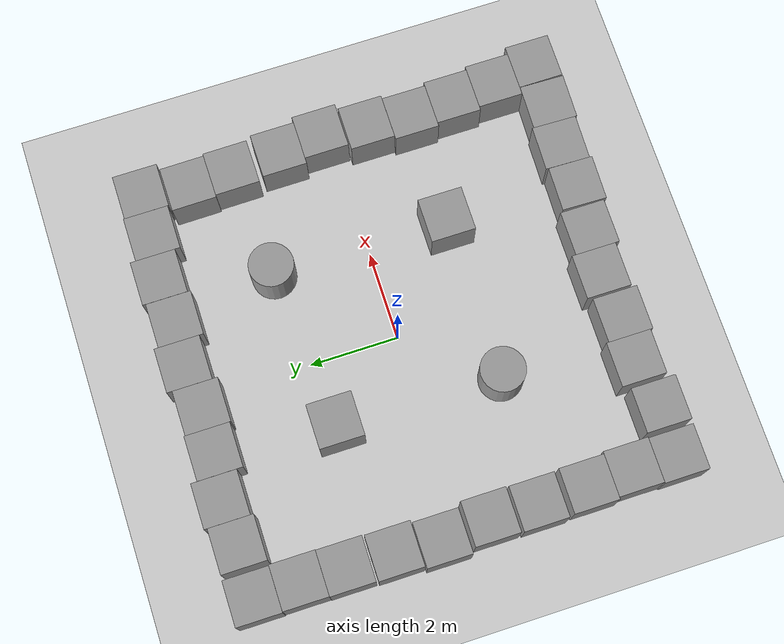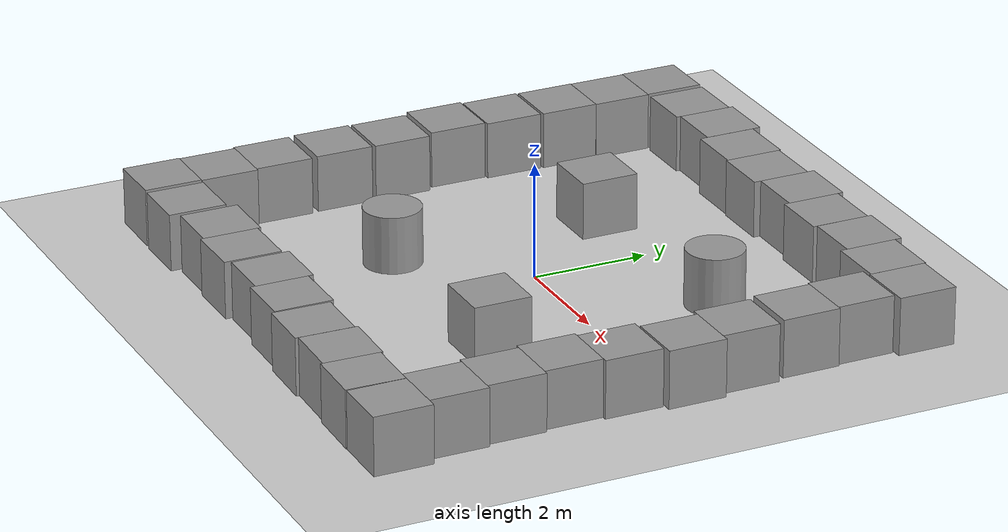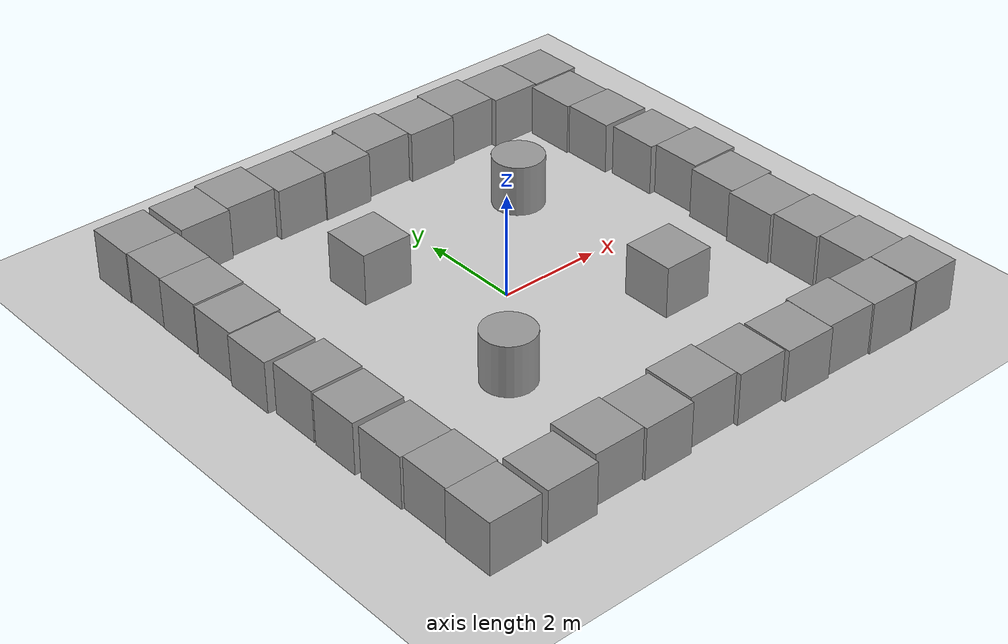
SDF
<sdf version="1.6">
 <world name="default">
  <light name="sun" type="directional">
   <pose>0 0 10 0 -0 0</pose>
   <diffuse>0.8 0.8 0.8 1</diffuse>
   <specular>0.1 0.1 0.1 1</specular>
   <attenuation>
    <range>1000</range>
    <constant>0.9</constant>
    <linear>0.01</linear>
    <quadratic>0.001</quadratic>
   </attenuation>
   <direction>-0.5 0.5 -1</direction>
  </light>
  <model name="ground_plane">
   <static>1</static>
   <link name="link">
    <collision name="collision">
     <geometry><plane><normal>0 0 1</normal><size>100 100</size></plane></geometry>
     <surface><friction><ode><mu>100</mu><mu2>50</mu2></ode></friction></surface>
    </collision>
    <visual name="visual">
     <cast_shadows>0</cast_shadows>
     <geometry><plane><normal>0 0 1</normal><size>100 100</size></plane></geometry>
     <material>
      <script><uri>file://media/materials/scripts/gazebo.material</uri><name>Gazebo/Grey</name></script>
     </material>
    </visual>
   </link>
  </model>
  <gravity>0 0 -9.8</gravity>
  <magnetic_field>6e-06 2.3e-05 -4.2e-05</magnetic_field>
  <atmosphere type="adiabatic"/>
  <physics name="default_physics" default="0" type="ode">
   <max_step_size>0.001</max_step_size>
   <real_time_factor>1</real_time_factor>
   <real_time_update_rate>1000</real_time_update_rate>
  </physics>
  <scene><ambient>0.4 0.4 0.4 1</ambient><background>0.7 0.7 0.7 1</background><shadows>1</shadows></scene>
  <spherical_coordinates>
   <surface_model>EARTH_WGS84</surface_model>
   <latitude_deg>0</latitude_deg>
   <longitude_deg>0</longitude_deg>
   <elevation>0</elevation>
   <heading_deg>0</heading_deg>
  </spherical_coordinates>
  <model name="unit_box_0_0">
   <pose>-4.47179 4.56821 0.499995 1e-05 -0 -0.001897</pose>
   <link name="link">
    <inertial>
     <mass>1</mass>
     <inertia>
      <ixx>0.166667</ixx>
      <ixy>0</ixy>
      <ixz>0</ixz>
      <iyy>0.166667</iyy>
      <iyz>0</iyz>
      <izz>0.166667</izz>
     </inertia>
    </inertial>
    <collision name="collision"><geometry><box><size>1 1 1</size></box></geometry></collision>
    <visual name="visual">
     <geometry><box><size>1 1 1</size></box></geometry>
     <material>
      <script><name>Gazebo/Grey</name><uri>file://media/materials/scripts/gazebo.material</uri></script>
     </material>
    </visual>
   </link>
  </model>
  <model name="unit_box_0_1">
   <pose>-4.45666 3.56798 0.499995 0 1e-05 -0.001628</pose>
   <link name="link">
    <inertial>
     <mass>1</mass>
     <inertia>
      <ixx>0.166667</ixx>
      <ixy>0</ixy>
      <ixz>0</ixz>
      <iyy>0.166667</iyy>
      <iyz>0</iyz>
      <izz>0.166667</izz>
     </inertia>
    </inertial>
    <collision name="collision"><geometry><box><size>1 1 1</size></box></geometry></collision>
    <visual name="visual">
     <geometry><box><size>1 1 1</size></box></geometry>
     <material>
      <script><name>Gazebo/Grey</name><uri>file://media/materials/scripts/gazebo.material</uri></script>
     </material>
    </visual>
   </link>
  </model>
  <model name="unit_box_0_2">
   <pose>-4.46914 2.56783 0.499995 -0 1e-05 -0.001457</pose>
   <link name="link">
    <inertial>
     <mass>1</mass>
     <inertia>
      <ixx>0.166667</ixx>
      <ixy>0</ixy>
      <ixz>0</ixz>
      <iyy>0.166667</iyy>
      <iyz>0</iyz>
      <izz>0.166667</izz>
     </inertia>
    </inertial>
    <collision name="collision"><geometry><box><size>1 1 1</size></box></geometry></collision>
    <visual name="visual">
     <geometry><box><size>1 1 1</size></box></geometry>
     <material>
      <script><name>Gazebo/Grey</name><uri>file://media/materials/scripts/gazebo.material</uri></script>
     </material>
    </visual>
   </link>
  </model>
  <model name="unit_box_0_3">
   <pose>-4.48628 1.52218 0.499995 0 1e-05 0</pose>
   <link name="link">
    <inertial>
     <mass>1</mass>
     <inertia>
      <ixx>0.166667</ixx>
      <ixy>0</ixy>
      <ixz>0</ixz>
      <iyy>0.166667</iyy>
      <iyz>0</iyz>
      <izz>0.166667</izz>
     </inertia>
    </inertial>
    <collision name="collision"><geometry><box><size>1 1 1</size></box></geometry></collision>
    <visual name="visual">
     <geometry><box><size>1 1 1</size></box></geometry>
     <material>
      <script><name>Gazebo/Grey</name><uri>file://media/materials/scripts/gazebo.material</uri></script>
     </material>
    </visual>
   </link>
  </model>
  <model name="unit_box_0_4">
   <pose>-4.54384 0.499458 0.499995 -1e-05 0 0</pose>
   <link name="link">
    <inertial>
     <mass>1</mass>
     <inertia>
      <ixx>0.166667</ixx>
      <ixy>0</ixy>
      <ixz>0</ixz>
      <iyy>0.166667</iyy>
      <iyz>0</iyz>
      <izz>0.166667</izz>
     </inertia>
    </inertial>
    <collision name="collision"><geometry><box><size>1 1 1</size></box></geometry></collision>
    <visual name="visual">
     <geometry><box><size>1 1 1</size></box></geometry>
     <material>
      <script><name>Gazebo/Grey</name><uri>file://media/materials/scripts/gazebo.material</uri></script>
     </material>
    </visual>
   </link>
  </model>
  <model name="unit_box_0_5">
   <pose>-4.43764 -0.581842 0.499995 0 1e-05 0</pose>
   <link name="link">
    <inertial>
     <mass>1</mass>
     <inertia>
      <ixx>0.166667</ixx>
      <ixy>0</ixy>
      <ixz>0</ixz>
      <iyy>0.166667</iyy>
      <iyz>0</iyz>
      <izz>0.166667</izz>
     </inertia>
    </inertial>
    <collision name="collision"><geometry><box><size>1 1 1</size></box></geometry></collision>
    <visual name="visual">
     <geometry><box><size>1 1 1</size></box></geometry>
     <material>
      <script><name>Gazebo/Grey</name><uri>file://media/materials/scripts/gazebo.material</uri></script>
     </material>
    </visual>
   </link>
  </model>
  <model name="unit_box_0_6">
   <pose>-4.4524 -1.63881 0.499995 -1e-05 0 0</pose>
   <link name="link">
    <inertial>
     <mass>1</mass>
     <inertia>
      <ixx>0.166667</ixx>
      <ixy>0</ixy>
      <ixz>0</ixz>
      <iyy>0.166667</iyy>
      <iyz>0</iyz>
      <izz>0.166667</izz>
     </inertia>
    </inertial>
    <collision name="collision"><geometry><box><size>1 1 1</size></box></geometry></collision>
    <visual name="visual">
     <geometry><box><size>1 1 1</size></box></geometry>
     <material>
      <script><name>Gazebo/Grey</name><uri>file://media/materials/scripts/gazebo.material</uri></script>
     </material>
    </visual>
   </link>
  </model>
  <model name="unit_box_0_7">
   <pose>-4.42519 -2.74745 0.499995 -0 -1e-05 0.000172</pose>
   <link name="link">
    <inertial>
     <mass>1</mass>
     <inertia>
      <ixx>0.166667</ixx>
      <ixy>0</ixy>
      <ixz>0</ixz>
      <iyy>0.166667</iyy>
      <iyz>0</iyz>
      <izz>0.166667</izz>
     </inertia>
    </inertial>
    <collision name="collision"><geometry><box><size>1 1 1</size></box></geometry></collision>
    <visual name="visual">
     <geometry><box><size>1 1 1</size></box></geometry>
     <material>
      <script><name>Gazebo/Grey</name><uri>file://media/materials/scripts/gazebo.material</uri></script>
     </material>
    </visual>
   </link>
  </model>
  <model name="unit_box_0_8">
   <pose>-4.37594 -3.74752 0.5 0 -0 0.00017</pose>
   <link name="link">
    <inertial>
     <mass>1</mass>
     <inertia>
      <ixx>0.166667</ixx>
      <ixy>0</ixy>
      <ixz>0</ixz>
      <iyy>0.166667</iyy>
      <iyz>0</iyz>
      <izz>0.166667</izz>
     </inertia>
    </inertial>
    <collision name="collision"><geometry><box><size>1 1 1</size></box></geometry></collision>
    <visual name="visual">
     <geometry><box><size>1 1 1</size></box></geometry>
     <material>
      <script><name>Gazebo/Grey</name><uri>file://media/materials/scripts/gazebo.material</uri></script>
     </material>
    </visual>
   </link>
  </model>
  <model name="unit_box_0_9">
   <pose>-4.39829 -4.74759 0.499995 0 -1e-05 0.000189</pose>
   <link name="link">
    <inertial>
     <mass>1</mass>
     <inertia>
      <ixx>0.166667</ixx>
      <ixy>0</ixy>
      <ixz>0</ixz>
      <iyy>0.166667</iyy>
      <iyz>0</iyz>
      <izz>0.166667</izz>
     </inertia>
    </inertial>
    <collision name="collision"><geometry><box><size>1 1 1</size></box></geometry></collision>
    <visual name="visual">
     <geometry><box><size>1 1 1</size></box></geometry>
     <material>
      <script><name>Gazebo/Grey</name><uri>file://media/materials/scripts/gazebo.material</uri></script>
     </material>
    </visual>
   </link>
  </model>
  <model name="unit_box_0_10">
   <pose>-3.29538 -4.7638 0.499995 -1e-05 0 0</pose>
   <link name="link">
    <inertial>
     <mass>1</mass>
     <inertia>
      <ixx>0.166667</ixx>
      <ixy>0</ixy>
      <ixz>0</ixz>
      <iyy>0.166667</iyy>
      <iyz>0</iyz>
      <izz>0.166667</izz>
     </inertia>
    </inertial>
    <collision name="collision"><geometry><box><size>1 1 1</size></box></geometry></collision>
    <visual name="visual">
     <geometry><box><size>1 1 1</size></box></geometry>
     <material>
      <script><name>Gazebo/Grey</name><uri>file://media/materials/scripts/gazebo.material</uri></script>
     </material>
    </visual>
   </link>
  </model>
  <model name="unit_box_0_11">
   <pose>-2.20756 -4.60793 0.499995 1e-05 -0 -0.00074</pose>
   <link name="link">
    <inertial>
     <mass>1</mass>
     <inertia>
      <ixx>0.166667</ixx>
      <ixy>0</ixy>
      <ixz>0</ixz>
      <iyy>0.166667</iyy>
      <iyz>0</iyz>
      <izz>0.166667</izz>
     </inertia>
    </inertial>
    <collision name="collision"><geometry><box><size>1 1 1</size></box></geometry></collision>
    <visual name="visual">
     <geometry><box><size>1 1 1</size></box></geometry>
     <material>
      <script><name>Gazebo/Grey</name><uri>file://media/materials/scripts/gazebo.material</uri></script>
     </material>
    </visual>
   </link>
  </model>
  <model name="unit_box_0_12">
   <pose>-1.2076 -4.66402 0.499995 1e-05 0 -0.000743</pose>
   <link name="link">
    <inertial>
     <mass>1</mass>
     <inertia>
      <ixx>0.166667</ixx>
      <ixy>0</ixy>
      <ixz>0</ixz>
      <iyy>0.166667</iyy>
      <iyz>0</iyz>
      <izz>0.166667</izz>
     </inertia>
    </inertial>
    <collision name="collision"><geometry><box><size>1 1 1</size></box></geometry></collision>
    <visual name="visual">
     <geometry><box><size>1 1 1</size></box></geometry>
     <material>
      <script><name>Gazebo/Grey</name><uri>file://media/materials/scripts/gazebo.material</uri></script>
     </material>
    </visual>
   </link>
  </model>
  <model name="unit_box_0_13">
   <pose>-0.161959 -4.55995 0.499995 0 1e-05 -0.001302</pose>
   <link name="link">
    <inertial>
     <mass>1</mass>
     <inertia>
      <ixx>0.166667</ixx>
      <ixy>0</ixy>
      <ixz>0</ixz>
      <iyy>0.166667</iyy>
      <iyz>0</iyz>
      <izz>0.166667</izz>
     </inertia>
    </inertial>
    <collision name="collision"><geometry><box><size>1 1 1</size></box></geometry></collision>
    <visual name="visual">
     <geometry><box><size>1 1 1</size></box></geometry>
     <material>
      <script><name>Gazebo/Grey</name><uri>file://media/materials/scripts/gazebo.material</uri></script>
     </material>
    </visual>
   </link>
  </model>
  <model name="unit_box_0_14">
   <pose>0.837925 -4.65195 0.499995 0 1e-05 -0.001302</pose>
   <link name="link">
    <inertial>
     <mass>1</mass>
     <inertia>
      <ixx>0.166667</ixx>
      <ixy>0</ixy>
      <ixz>0</ixz>
      <iyy>0.166667</iyy>
      <iyz>0</iyz>
      <izz>0.166667</izz>
     </inertia>
    </inertial>
    <collision name="collision"><geometry><box><size>1 1 1</size></box></geometry></collision>
    <visual name="visual">
     <geometry><box><size>1 1 1</size></box></geometry>
     <material>
      <script><name>Gazebo/Grey</name><uri>file://media/materials/scripts/gazebo.material</uri></script>
     </material>
    </visual>
   </link>
  </model>
  <model name="unit_box_0_15">
   <pose>-3.36215 4.557 0.499995 -1e-05 -0 0.000421</pose>
   <link name="link">
    <inertial>
     <mass>1</mass>
     <inertia>
      <ixx>0.166667</ixx>
      <ixy>0</ixy>
      <ixz>0</ixz>
      <iyy>0.166667</iyy>
      <iyz>0</iyz>
      <izz>0.166667</izz>
     </inertia>
    </inertial>
    <collision name="collision"><geometry><box><size>1 1 1</size></box></geometry></collision>
    <visual name="visual">
     <geometry><box><size>1 1 1</size></box></geometry>
     <material>
      <script><name>Gazebo/Grey</name><uri>file://media/materials/scripts/gazebo.material</uri></script>
     </material>
    </visual>
   </link>
  </model>
  <model name="unit_box_0_16">
   <pose>-2.36174 4.62584 0.499995 -1e-05 -0 0.00043</pose>
   <link name="link">
    <inertial>
     <mass>1</mass>
     <inertia>
      <ixx>0.166667</ixx>
      <ixy>0</ixy>
      <ixz>0</ixz>
      <iyy>0.166667</iyy>
      <iyz>0</iyz>
      <izz>0.166667</izz>
     </inertia>
    </inertial>
    <collision name="collision"><geometry><box><size>1 1 1</size></box></geometry></collision>
    <visual name="visual">
     <geometry><box><size>1 1 1</size></box></geometry>
     <material>
      <script><name>Gazebo/Grey</name><uri>file://media/materials/scripts/gazebo.material</uri></script>
     </material>
    </visual>
   </link>
  </model>
  <model name="unit_box_0_17">
   <pose>-1.36073 4.48555 0.499995 0 -9e-06 0.000455</pose>
   <link name="link">
    <inertial>
     <mass>1</mass>
     <inertia>
      <ixx>0.166667</ixx>
      <ixy>0</ixy>
      <ixz>0</ixz>
      <iyy>0.166667</iyy>
      <iyz>0</iyz>
      <izz>0.166667</izz>
     </inertia>
    </inertial>
    <collision name="collision"><geometry><box><size>1 1 1</size></box></geometry></collision>
    <visual name="visual">
     <geometry><box><size>1 1 1</size></box></geometry>
     <material>
      <script><name>Gazebo/Grey</name><uri>file://media/materials/scripts/gazebo.material</uri></script>
     </material>
    </visual>
   </link>
  </model>
  <model name="unit_box_0_18">
   <pose>-0.360626 4.45774 0.499995 0 1e-05 0.000614</pose>
   <link name="link">
    <inertial>
     <mass>1</mass>
     <inertia>
      <ixx>0.166667</ixx>
      <ixy>0</ixy>
      <ixz>0</ixz>
      <iyy>0.166667</iyy>
      <iyz>0</iyz>
      <izz>0.166667</izz>
     </inertia>
    </inertial>
    <collision name="collision"><geometry><box><size>1 1 1</size></box></geometry></collision>
    <visual name="visual">
     <geometry><box><size>1 1 1</size></box></geometry>
     <material>
      <script><name>Gazebo/Grey</name><uri>file://media/materials/scripts/gazebo.material</uri></script>
     </material>
    </visual>
   </link>
  </model>
  <model name="unit_box_0_19">
   <pose>0.639346 4.57612 0.499995 -1e-05 -0 0.000659</pose>
   <link name="link">
    <inertial>
     <mass>1</mass>
     <inertia>
      <ixx>0.166667</ixx>
      <ixy>0</ixy>
      <ixz>0</ixz>
      <iyy>0.166667</iyy>
      <iyz>0</iyz>
      <izz>0.166667</izz>
     </inertia>
    </inertial>
    <collision name="collision"><geometry><box><size>1 1 1</size></box></geometry></collision>
    <visual name="visual">
     <geometry><box><size>1 1 1</size></box></geometry>
     <material>
      <script><name>Gazebo/Grey</name><uri>file://media/materials/scripts/gazebo.material</uri></script>
     </material>
    </visual>
   </link>
  </model>
  <model name="unit_box_0_20">
   <pose>1.63943 4.48127 0.499995 -0 -1e-05 0.000652</pose>
   <link name="link">
    <inertial>
     <mass>1</mass>
     <inertia>
      <ixx>0.166667</ixx>
      <ixy>0</ixy>
      <ixz>0</ixz>
      <iyy>0.166667</iyy>
      <iyz>0</iyz>
      <izz>0.166667</izz>
     </inertia>
    </inertial>
    <collision name="collision"><geometry><box><size>1 1 1</size></box></geometry></collision>
    <visual name="visual">
     <geometry><box><size>1 1 1</size></box></geometry>
     <material>
      <script><name>Gazebo/Grey</name><uri>file://media/materials/scripts/gazebo.material</uri></script>
     </material>
    </visual>
   </link>
  </model>
  <model name="unit_box_0_21">
   <pose>2.64095 4.54859 0.499995 0 1e-05 0.000737</pose>
   <link name="link">
    <inertial>
     <mass>1</mass>
     <inertia>
      <ixx>0.166667</ixx>
      <ixy>0</ixy>
      <ixz>0</ixz>
      <iyy>0.166667</iyy>
      <iyz>0</iyz>
      <izz>0.166667</izz>
     </inertia>
    </inertial>
    <collision name="collision"><geometry><box><size>1 1 1</size></box></geometry></collision>
    <visual name="visual">
     <geometry><box><size>1 1 1</size></box></geometry>
     <material>
      <script><name>Gazebo/Grey</name><uri>file://media/materials/scripts/gazebo.material</uri></script>
     </material>
    </visual>
   </link>
  </model>
  <model name="unit_box_0_22">
   <pose>3.64108 4.42764 0.499995 -0 -1e-05 0.000685</pose>
   <link name="link">
    <inertial>
     <mass>1</mass>
     <inertia>
      <ixx>0.166667</ixx>
      <ixy>0</ixy>
      <ixz>0</ixz>
      <iyy>0.166667</iyy>
      <iyz>0</iyz>
      <izz>0.166667</izz>
     </inertia>
    </inertial>
    <collision name="collision"><geometry><box><size>1 1 1</size></box></geometry></collision>
    <visual name="visual">
     <geometry><box><size>1 1 1</size></box></geometry>
     <material>
      <script><name>Gazebo/Grey</name><uri>file://media/materials/scripts/gazebo.material</uri></script>
     </material>
    </visual>
   </link>
  </model>
  <model name="unit_box_0_23">
   <pose>4.64124 4.4041 0.499995 0 1e-05 0.000681</pose>
   <link name="link">
    <inertial>
     <mass>1</mass>
     <inertia>
      <ixx>0.166667</ixx>
      <ixy>0</ixy>
      <ixz>0</ixz>
      <iyy>0.166667</iyy>
      <iyz>0</iyz>
      <izz>0.166667</izz>
     </inertia>
    </inertial>
    <collision name="collision"><geometry><box><size>1 1 1</size></box></geometry></collision>
    <visual name="visual">
     <geometry><box><size>1 1 1</size></box></geometry>
     <material>
      <script><name>Gazebo/Grey</name><uri>file://media/materials/scripts/gazebo.material</uri></script>
     </material>
    </visual>
   </link>
  </model>
  <model name="unit_box_0_24">
   <pose>4.50277 3.36779 0.499995 1e-05 -0 0.008333</pose>
   <link name="link">
    <inertial>
     <mass>1</mass>
     <inertia>
      <ixx>0.166667</ixx>
      <ixy>0</ixy>
      <ixz>0</ixz>
      <iyy>0.166667</iyy>
      <iyz>0</iyz>
      <izz>0.166667</izz>
     </inertia>
    </inertial>
    <collision name="collision"><geometry><box><size>1 1 1</size></box></geometry></collision>
    <visual name="visual">
     <geometry><box><size>1 1 1</size></box></geometry>
     <material>
      <script><name>Gazebo/Grey</name><uri>file://media/materials/scripts/gazebo.material</uri></script>
     </material>
    </visual>
   </link>
  </model>
  <model name="unit_box_0_25">
   <pose>4.55676 2.36818 0.499995 1e-05 -0 0.008328</pose>
   <link name="link">
    <inertial>
     <mass>1</mass>
     <inertia>
      <ixx>0.166667</ixx>
      <ixy>0</ixy>
      <ixz>0</ixz>
      <iyy>0.166667</iyy>
      <iyz>0</iyz>
      <izz>0.166667</izz>
     </inertia>
    </inertial>
    <collision name="collision"><geometry><box><size>1 1 1</size></box></geometry></collision>
    <visual name="visual">
     <geometry><box><size>1 1 1</size></box></geometry>
     <material>
      <script><name>Gazebo/Grey</name><uri>file://media/materials/scripts/gazebo.material</uri></script>
     </material>
    </visual>
   </link>
  </model>
  <model name="unit_box_0_26">
   <pose>4.64368 1.25888 0.499995 0 -1e-05 0.003106</pose>
   <link name="link">
    <inertial>
     <mass>1</mass>
     <inertia>
      <ixx>0.166667</ixx>
      <ixy>0</ixy>
      <ixz>0</ixz>
      <iyy>0.166667</iyy>
      <iyz>0</iyz>
      <izz>0.166667</izz>
     </inertia>
    </inertial>
    <collision name="collision"><geometry><box><size>1 1 1</size></box></geometry></collision>
    <visual name="visual">
     <geometry><box><size>1 1 1</size></box></geometry>
     <material>
      <script><name>Gazebo/Grey</name><uri>file://media/materials/scripts/gazebo.material</uri></script>
     </material>
    </visual>
   </link>
  </model>
  <model name="unit_box_0_27">
   <pose>4.77245 0.259263 0.499995 0 -1e-05 0.003102</pose>
   <link name="link">
    <inertial>
     <mass>1</mass>
     <inertia>
      <ixx>0.166667</ixx>
      <ixy>0</ixy>
      <ixz>0</ixz>
      <iyy>0.166667</iyy>
      <iyz>0</iyz>
      <izz>0.166667</izz>
     </inertia>
    </inertial>
    <collision name="collision"><geometry><box><size>1 1 1</size></box></geometry></collision>
    <visual name="visual">
     <geometry><box><size>1 1 1</size></box></geometry>
     <material>
      <script><name>Gazebo/Grey</name><uri>file://media/materials/scripts/gazebo.material</uri></script>
     </material>
    </visual>
   </link>
  </model>
  <model name="unit_box_0_28">
   <pose>4.65287 -0.77452 0.499995 -1e-05 -0 -0.000576</pose>
   <link name="link">
    <inertial>
     <mass>1</mass>
     <inertia>
      <ixx>0.166667</ixx>
      <ixy>0</ixy>
      <ixz>0</ixz>
      <iyy>0.166667</iyy>
      <iyz>0</iyz>
      <izz>0.166667</izz>
     </inertia>
    </inertial>
    <collision name="collision"><geometry><box><size>1 1 1</size></box></geometry></collision>
    <visual name="visual">
     <geometry><box><size>1 1 1</size></box></geometry>
     <material>
      <script><name>Gazebo/Grey</name><uri>file://media/materials/scripts/gazebo.material</uri></script>
     </material>
    </visual>
   </link>
  </model>
  <model name="unit_box_0_29">
   <pose>4.58026 -1.77458 0.499995 1e-05 -0 -0.000386</pose>
   <link name="link">
    <inertial>
     <mass>1</mass>
     <inertia>
      <ixx>0.166667</ixx>
      <ixy>0</ixy>
      <ixz>0</ixz>
      <iyy>0.166667</iyy>
      <iyz>0</iyz>
      <izz>0.166667</izz>
     </inertia>
    </inertial>
    <collision name="collision"><geometry><box><size>1 1 1</size></box></geometry></collision>
    <visual name="visual">
     <geometry><box><size>1 1 1</size></box></geometry>
     <material>
      <script><name>Gazebo/Grey</name><uri>file://media/materials/scripts/gazebo.material</uri></script>
     </material>
    </visual>
   </link>
  </model>
  <model name="unit_box_0_30">
   <pose>4.65506 -2.77462 0.499995 -1e-05 0 -0.000345</pose>
   <link name="link">
    <inertial>
     <mass>1</mass>
     <inertia>
      <ixx>0.166667</ixx>
      <ixy>0</ixy>
      <ixz>0</ixz>
      <iyy>0.166667</iyy>
      <iyz>0</iyz>
      <izz>0.166667</izz>
     </inertia>
    </inertial>
    <collision name="collision"><geometry><box><size>1 1 1</size></box></geometry></collision>
    <visual name="visual">
     <geometry><box><size>1 1 1</size></box></geometry>
     <material>
      <script><name>Gazebo/Grey</name><uri>file://media/materials/scripts/gazebo.material</uri></script>
     </material>
    </visual>
   </link>
  </model>
  <model name="unit_box_0_31">
   <pose>4.73017 -3.77472 0.499995 -1e-05 -0 -0.000254</pose>
   <link name="link">
    <inertial>
     <mass>1</mass>
     <inertia>
      <ixx>0.166667</ixx>
      <ixy>0</ixy>
      <ixz>0</ixz>
      <iyy>0.166667</iyy>
      <iyz>0</iyz>
      <izz>0.166667</izz>
     </inertia>
    </inertial>
    <collision name="collision"><geometry><box><size>1 1 1</size></box></geometry></collision>
    <visual name="visual">
     <geometry><box><size>1 1 1</size></box></geometry>
     <material>
      <script><name>Gazebo/Grey</name><uri>file://media/materials/scripts/gazebo.material</uri></script>
     </material>
    </visual>
   </link>
  </model>
  <model name="unit_box_0_32">
   <pose>1.87193 -4.73627 0.499995 0 1e-05 -0.023194</pose>
   <link name="link">
    <inertial>
     <mass>1</mass>
     <inertia>
      <ixx>0.166667</ixx>
      <ixy>0</ixy>
      <ixz>0</ixz>
      <iyy>0.166667</iyy>
      <iyz>0</iyz>
      <izz>0.166667</izz>
     </inertia>
    </inertial>
    <collision name="collision"><geometry><box><size>1 1 1</size></box></geometry></collision>
    <visual name="visual">
     <geometry><box><size>1 1 1</size></box></geometry>
     <material>
      <script><name>Gazebo/Grey</name><uri>file://media/materials/scripts/gazebo.material</uri></script>
     </material>
    </visual>
   </link>
  </model>
  <model name="unit_box_0_33">
   <pose>2.87439 -4.70566 0.499995 -0 1e-05 -0.025857</pose>
   <link name="link">
    <inertial>
     <mass>1</mass>
     <inertia>
      <ixx>0.166667</ixx>
      <ixy>0</ixy>
      <ixz>0</ixz>
      <iyy>0.166667</iyy>
      <iyz>0</iyz>
      <izz>0.166667</izz>
     </inertia>
    </inertial>
    <collision name="collision"><geometry><box><size>1 1 1</size></box></geometry></collision>
    <visual name="visual">
     <geometry><box><size>1 1 1</size></box></geometry>
     <material>
      <script><name>Gazebo/Grey</name><uri>file://media/materials/scripts/gazebo.material</uri></script>
     </material>
    </visual>
   </link>
  </model>
  <model name="unit_box_0_34">
   <pose>3.87314 -4.76772 0.499995 0 -1e-05 -0.025824</pose>
   <link name="link">
    <inertial>
     <mass>1</mass>
     <inertia>
      <ixx>0.166667</ixx>
      <ixy>0</ixy>
      <ixz>0</ixz>
      <iyy>0.166667</iyy>
      <iyz>0</iyz>
      <izz>0.166667</izz>
     </inertia>
    </inertial>
    <collision name="collision"><geometry><box><size>1 1 1</size></box></geometry></collision>
    <visual name="visual">
     <geometry><box><size>1 1 1</size></box></geometry>
     <material>
      <script><name>Gazebo/Grey</name><uri>file://media/materials/scripts/gazebo.material</uri></script>
     </material>
    </visual>
   </link>
  </model>
  <model name="unit_box_0_35">
   <pose>4.89009 -4.77489 0.499995 1e-05 0 7.4e-05</pose>
   <link name="link">
    <inertial>
     <mass>1</mass>
     <inertia>
      <ixx>0.166667</ixx>
      <ixy>0</ixy>
      <ixz>0</ixz>
      <iyy>0.166667</iyy>
      <iyz>0</iyz>
      <izz>0.166667</izz>
     </inertia>
    </inertial>
    <collision name="collision"><geometry><box><size>1 1 1</size></box></geometry></collision>
    <visual name="visual">
     <geometry><box><size>1 1 1</size></box></geometry>
     <material>
      <script><name>Gazebo/Grey</name><uri>file://media/materials/scripts/gazebo.material</uri></script>
     </material>
    </visual>
   </link>
  </model>
  <model name="unit_cylinder_0">
   <pose>2.16598 2.17227 0.499993 -3e-06 -3e-06 0</pose>
   <link name="link">
    <inertial>
     <mass>1</mass>
     <inertia><ixx>0.145833</ixx><ixy>0</ixy><ixz>0</ixz><iyy>0.145833</iyy><iyz>0</iyz><izz>0.125</izz></inertia>
    </inertial>
    <collision name="collision">
     <geometry><cylinder><radius>0.5</radius><length>1</length></cylinder></geometry>
    </collision>
    <visual name="visual">
     <geometry><cylinder><radius>0.5</radius><length>1</length></cylinder></geometry>
     <material>
      <script><name>Gazebo/Grey</name><uri>file://media/materials/scripts/gazebo.material</uri></script>
     </material>
    </visual>
   </link>
  </model>
  <model name="unit_box_0_36">
   <pose>-1.50585 1.86702 0.499995 0 1e-05 0</pose>
   <link name="link">
    <inertial>
     <mass>1</mass>
     <inertia>
      <ixx>0.166667</ixx>
      <ixy>0</ixy>
      <ixz>0</ixz>
      <iyy>0.166667</iyy>
      <iyz>0</iyz>
      <izz>0.166667</izz>
     </inertia>
    </inertial>
    <collision name="collision"><geometry><box><size>1 1 1</size></box></geometry></collision>
    <visual name="visual">
     <geometry><box><size>1 1 1</size></box></geometry>
     <material>
      <script><name>Gazebo/Grey</name><uri>file://media/materials/scripts/gazebo.material</uri></script>
     </material>
    </visual>
   </link>
  </model>
  <model name="unit_cylinder_1">
   <pose>-1.56375 -1.83789 0.499993 -3e-06 -4e-06 -0</pose>
   <link name="link">
    <inertial>
     <mass>1</mass>
     <inertia><ixx>0.145833</ixx><ixy>0</ixy><ixz>0</ixz><iyy>0.145833</iyy><iyz>0</iyz><izz>0.125</izz></inertia>
    </inertial>
    <collision name="collision">
     <geometry><cylinder><radius>0.5</radius><length>1</length></cylinder></geometry>
    </collision>
    <visual name="visual">
     <geometry><cylinder><radius>0.5</radius><length>1</length></cylinder></geometry>
     <material>
      <script><name>Gazebo/Grey</name><uri>file://media/materials/scripts/gazebo.material</uri></script>
     </material>
    </visual>
   </link>
  </model>
  <model name="unit_box_0_37">
   <pose>2.07538 -1.78854 0.5 0 -0 0</pose>
   <link name="link">
    <inertial>
     <mass>1</mass>
     <inertia>
      <ixx>0.166667</ixx>
      <ixy>0</ixy>
      <ixz>0</ixz>
      <iyy>0.166667</iyy>
      <iyz>0</iyz>
      <izz>0.166667</izz>
     </inertia>
    </inertial>
    <collision name="collision"><geometry><box><size>1 1 1</size></box></geometry></collision>
    <visual name="visual">
     <geometry><box><size>1 1 1</size></box></geometry>
     <material>
      <script><name>Gazebo/Grey</name><uri>file://media/materials/scripts/gazebo.material</uri></script>
     </material>
    </visual>
   </link>
  </model>
 </world>
</sdf>
